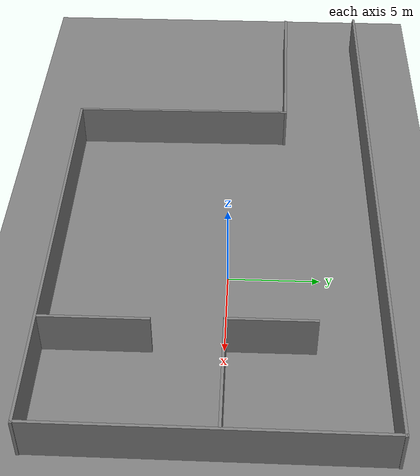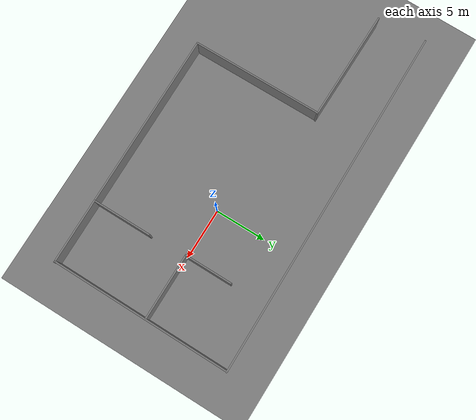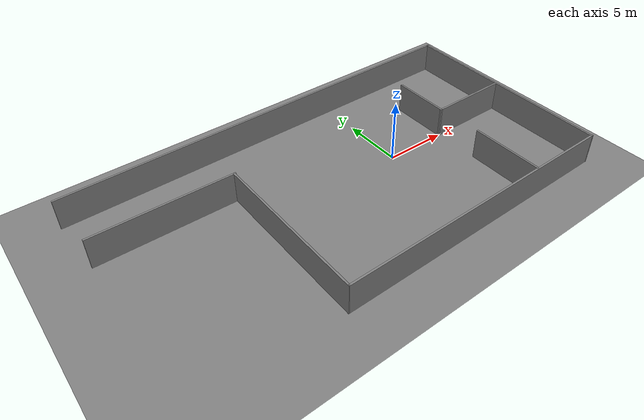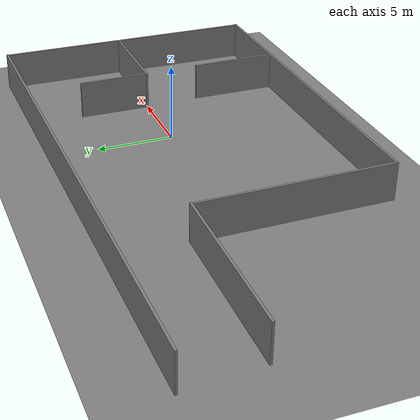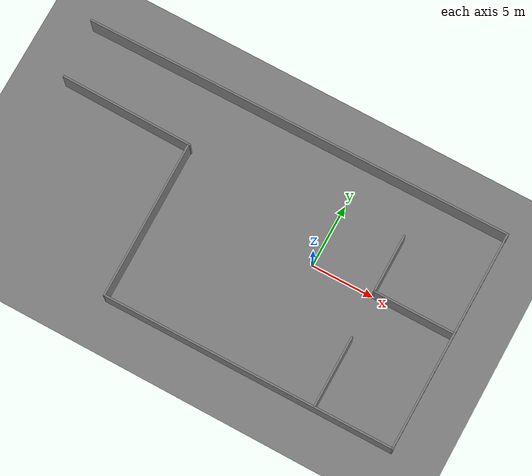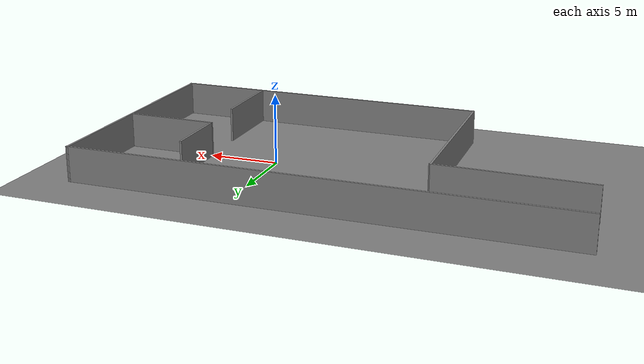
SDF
<?xml version="1.0" ?>
<sdf version="1.9">
  <world name="default">

    <!-- Required system plugins for Gazebo Fortress -->
    <plugin filename="gz-sim-physics-system" name="gz::sim::systems::Physics"/>
    <plugin filename="gz-sim-user-commands-system" name="gz::sim::systems::UserCommands"/>
    <plugin filename="gz-sim-scene-broadcaster-system" name="gz::sim::systems::SceneBroadcaster"/>
    <plugin filename="gz-sim-sensors-system" name="gz::sim::systems::Sensors">
      <render_engine>ogre2</render_engine>
    </plugin>
    <plugin filename="gz-sim-imu-system" name="gz::sim::systems::Imu"/>

    <!-- Physics configuration for Gazebo Fortress -->
    <physics name="default_physics" type="ode">
      <max_step_size>0.004</max_step_size>
      <real_time_factor>1.0</real_time_factor>
      <real_time_update_rate>250</real_time_update_rate>
      <ode>
        <solver>
          <type>quick</type>
          <iters>50</iters>
          <sor>1.3</sor>
        </solver>
        <constraints>
          <cfm>0.0</cfm>
          <erp>0.2</erp>
          <contact_max_correcting_vel>100.0</contact_max_correcting_vel>
          <contact_surface_layer>0.001</contact_surface_layer>
        </constraints>
      </ode>
    </physics>

    <!-- Sun light -->
    <light name="sun" type="directional">
      <cast_shadows>true</cast_shadows>
      <pose>0 0 10 0 0 0</pose>
      <diffuse>0.8 0.8 0.8 1</diffuse>
      <specular>0.2 0.2 0.2 1</specular>
      <attenuation>
        <range>1000</range>
        <constant>0.9</constant>
        <linear>0.01</linear>
        <quadratic>0.001</quadratic>
      </attenuation>
      <direction>-0.5 0.1 -0.9</direction>
    </light>

    <!-- Ground plane -->
    <model name="ground_plane">
      <static>true</static>
      <link name="link">
        <collision name="collision">
          <geometry>
            <plane>
              <normal>0 0 1</normal>
              <size>100 100</size>
            </plane>
          </geometry>
          <surface>
            <friction>
              <ode>
                <mu>100</mu>
                <mu2>50</mu2>
              </ode>
            </friction>
          </surface>
        </collision>
        <visual name="visual">
          <geometry>
            <plane>
              <normal>0 0 1</normal>
              <size>100 100</size>
            </plane>
          </geometry>
          <material>
            <ambient>0.5 0.5 0.5 1</ambient>
            <diffuse>0.5 0.5 0.5 1</diffuse>
            <specular>0.1 0.1 0.1 1</specular>
          </material>
        </visual>
      </link>
    </model>

    <!-- Your walls - I've converted the first wall as example; similarly convert others -->
    <model name="walls">
      <static>true</static>
      <pose>-5.7035 -0.594522 0 0 0 0</pose>

      <!-- Wall 18 -->
      <link name="Wall_18">
        <pose>0 8.77426 0 0 0 0.007034</pose>
        <collision name="collision">
          <geometry>
            <box>
              <size>34.6607 0.15 2.5</size>
            </box>
          </geometry>
          <pose>0 0 1.25 0 0 0</pose>
        </collision>
        <visual name="visual">
          <geometry>
            <box>
              <size>34.6607 0.15 2.5</size>
            </box>
          </geometry>
          <pose>0 0 1.25 0 0 0</pose>
          <material>
            <ambient>0.5 0.5 0.5 1</ambient>
            <diffuse>0.5 0.5 0.5 1</diffuse>
          </material>
        </visual>
      </link>

      <!-- Wall 19 -->
      <link name="Wall_19">
        <pose>17.174 0.053597 0 0 0 -1.57537</pose>
        <collision name="collision">
          <geometry>
            <box>
              <size>17.8345 0.15 2.5</size>
            </box>
          </geometry>
          <pose>0 0 1.25 0 0 0</pose>
        </collision>
        <visual name="visual">
          <geometry>
            <box>
              <size>17.8345 0.15 2.5</size>
            </box>
          </geometry>
          <pose>0 0 1.25 0 0 0</pose>
          <material>
            <ambient>0.5 0.5 0.5 1</ambient>
            <diffuse>0.5 0.5 0.5 1</diffuse>
          </material>
        </visual>
      </link>

      <!-- Wall 20 -->
      <link name="Wall_20">
        <pose>5.51595 -8.84193 0 0 0 -3.137</pose>
        <collision name="collision">
          <geometry>
            <box>
              <size>23.4664 0.15 2.5</size>
            </box>
          </geometry>
          <pose>0 0 1.25 0 0 0</pose>
        </collision>
        <visual name="visual">
          <geometry>
            <box>
              <size>23.4664 0.15 2.5</size>
            </box>
          </geometry>
          <pose>0 0 1.25 0 0 0</pose>
          <material>
            <ambient>0.5 0.5 0.5 1</ambient>
            <diffuse>0.5 0.5 0.5 1</diffuse>
          </material>
        </visual>
      </link>

      <!-- Wall 21 -->
      <link name="Wall_21">
        <pose>-6.25631 -2.55704 0 0 0 1.58037</pose>
        <collision name="collision">
          <geometry>
            <box>
              <size>12.8274 0.15 2.5</size>
            </box>
          </geometry>
          <pose>0 0 1.25 0 0 0</pose>
        </collision>
        <visual name="visual">
          <geometry>
            <box>
              <size>12.8274 0.15 2.5</size>
            </box>
          </geometry>
          <pose>0 0 1.25 0 0 0</pose>
          <material>
            <ambient>0.5 0.5 0.5 1</ambient>
            <diffuse>0.5 0.5 0.5 1</diffuse>
          </material>
        </visual>
      </link>

      <!-- Wall 22 -->
      <link name="Wall_22">
        <pose>-11.5805 3.85508 0 0 0 3.12773</pose>
        <collision name="collision">
          <geometry>
            <box>
              <size>10.7851 0.15 2.5</size>
            </box>
          </geometry>
          <pose>0 0 1.25 0 0 0</pose>
        </collision>
        <visual name="visual">
          <geometry>
            <box>
              <size>10.7851 0.15 2.5</size>
            </box>
          </geometry>
          <pose>0 0 1.25 0 0 0</pose>
          <material>
            <ambient>0.5 0.5 0.5 1</ambient>
            <diffuse>0.5 0.5 0.5 1</diffuse>
          </material>
        </visual>
      </link>

      <!-- Wall 25 -->
      <link name="Wall_25">
        <pose>13.8764 0.602231 0 0 0 3.14159</pose>
        <collision name="collision">
          <geometry>
            <box>
              <size>6.5 0.15 2.5</size>
            </box>
          </geometry>
          <pose>0 0 1.25 0 0 0</pose>
        </collision>
        <visual name="visual">
          <geometry>
            <box>
              <size>6.5 0.15 2.5</size>
            </box>
          </geometry>
          <pose>0 0 1.25 0 0 0</pose>
          <material>
            <ambient>0.5 0.5 0.5 1</ambient>
            <diffuse>0.5 0.5 0.5 1</diffuse>
          </material>
        </visual>
      </link>

      <!-- Wall 26 -->
      <link name="Wall_26">
        <pose>10.7014 2.90223 0 0 0 1.5708</pose>
        <collision name="collision">
          <geometry>
            <box>
              <size>4.75 0.15 2.5</size>
            </box>
          </geometry>
          <pose>0 0 1.25 0 0 0</pose>
        </collision>
        <visual name="visual">
          <geometry>
            <box>
              <size>4.75 0.15 2.5</size>
            </box>
          </geometry>
          <pose>0 0 1.25 0 0 0</pose>
          <material>
            <ambient>0.5 0.5 0.5 1</ambient>
            <diffuse>0.5 0.5 0.5 1</diffuse>
          </material>
        </visual>
      </link>

      <!-- Wall 29 -->
      <link name="Wall_29">
        <pose>10.8617 -5.94301 0 0 0 1.5708</pose>
        <collision name="collision">
          <geometry>
            <box>
              <size>5.75 0.15 2.5</size>
            </box>
          </geometry>
          <pose>0 0 1.25 0 0 0</pose>
        </collision>
        <visual name="visual">
          <geometry>
            <box>
              <size>5.75 0.15 2.5</size>
            </box>
          </geometry>
          <pose>0 0 1.25 0 0 0</pose>
          <material>
            <ambient>0.5 0.5 0.5 1</ambient>
            <diffuse>0.5 0.5 0.5 1</diffuse>
          </material>
        </visual>
      </link>
    </model>

    <!-- Scene configuration -->
    <scene>
      <ambient>0.4 0.4 0.4 1</ambient>
      <background>0.7 0.7 0.7 1</background>
      <shadows>true</shadows>
      <grid>true</grid>
    </scene>

    <!-- Gravity -->
    <gravity>0 0 -9.8</gravity>

    <!-- GUI view configuration -->
    <gui>
      <camera name="user_camera">
        <pose>1.41467 -10.4663 46.7197 3.14159 1.57079 3.14159</pose>
        <view_controller>orbit</view_controller>
        <projection_type>perspective</projection_type>
      </camera>
    </gui>
  </world>
</sdf>
